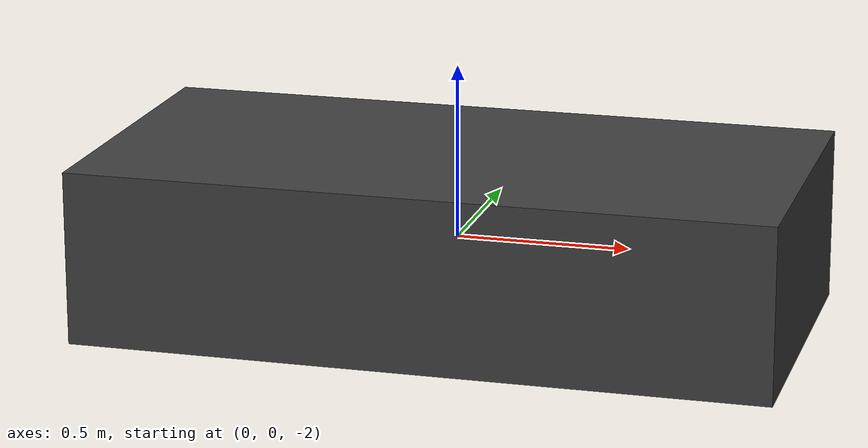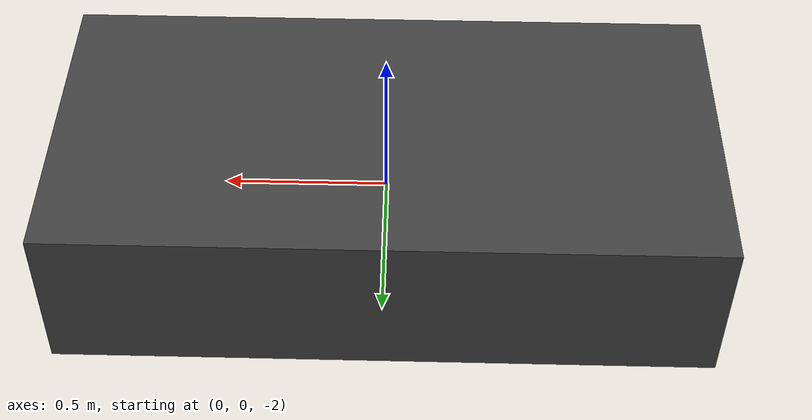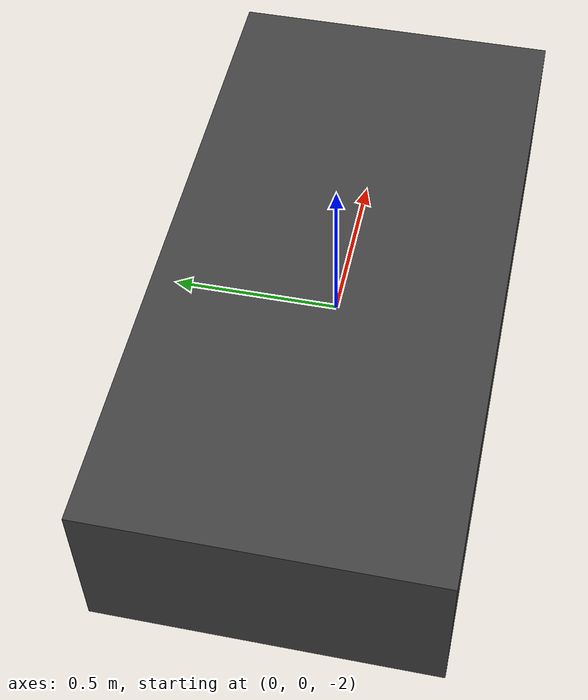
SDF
<?xml version="1.0"?>
<sdf version="1.7">

  <model name="oceansync_sensor_rig">

    <!-- Temporary underwater test vehicle -->
    <pose>0 0 -2 0 0 0</pose>
    <static>true</static>

    <link name="base_link">

      <inertial>
        <mass>20.0</mass>
        <inertia>
          <ixx>1.0</ixx>
          <iyy>1.0</iyy>
          <izz>1.0</izz>
          <ixy>0</ixy>
          <ixz>0</ixz>
          <iyz>0</iyz>
        </inertia>
      </inertial>

      <collision name="collision">
        <geometry>
          <box>
            <size>2.0 1.0 0.5</size>
          </box>
        </geometry>
      </collision>

      <visual name="visual">
        <geometry>
          <box>
            <size>2.0 1.0 0.5</size>
          </box>
        </geometry>

        <material>
          <ambient>0.15 0.15 0.15 1</ambient>
          <diffuse>0.25 0.25 0.25 1</diffuse>
        </material>
      </visual>

      <!-- IMU -->
      <sensor name="imu" type="imu">
        <always_on>true</always_on>
        <update_rate>50</update_rate>
        <visualize>true</visualize>
      </sensor>

      <!-- Forward underwater camera -->
      <sensor name="underwater_camera" type="camera">
        <pose>0.9 0 -0.05 0 0 0</pose>

        <always_on>true</always_on>
        <update_rate>15</update_rate>

        <camera>
          <horizontal_fov>1.047</horizontal_fov>

          <image>
            <width>640</width>
            <height>480</height>
            <format>R8G8B8</format>
          </image>

          <clip>
            <near>0.1</near>
            <far>100</far>
          </clip>
        </camera>
      </sensor>

      <!-- Forward LiDAR -->
      <sensor name="lidar" type="gpu_lidar">
        <pose>0.8 0 -0.2 0 0 0</pose>

        <always_on>true</always_on>
        <update_rate>10</update_rate>

        <lidar>

          <scan>
            <horizontal>
              <samples>360</samples>
              <resolution>1</resolution>
              <min_angle>-3.14159</min_angle>
              <max_angle>3.14159</max_angle>
            </horizontal>

            <vertical>
              <samples>1</samples>
              <resolution>1</resolution>
              <min_angle>0</min_angle>
              <max_angle>0</max_angle>
            </vertical>
          </scan>

          <range>
            <min>0.2</min>
            <max>50.0</max>
            <resolution>0.01</resolution>
          </range>

        </lidar>
      </sensor>

    </link>

  </model>

</sdf>
